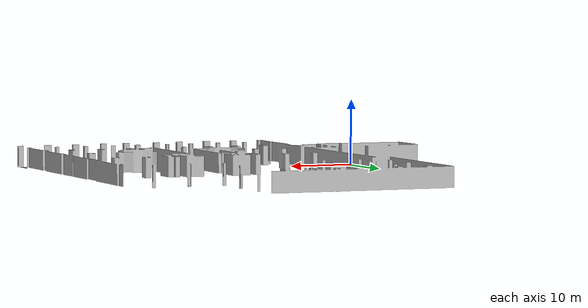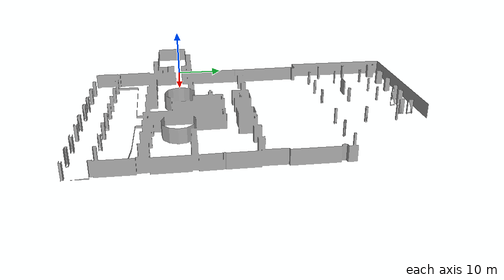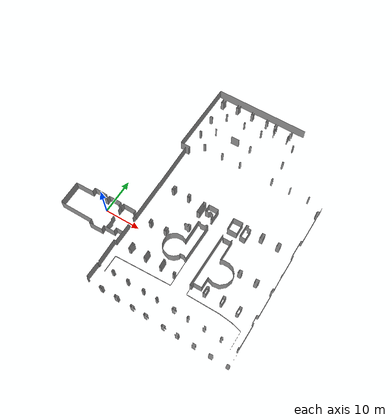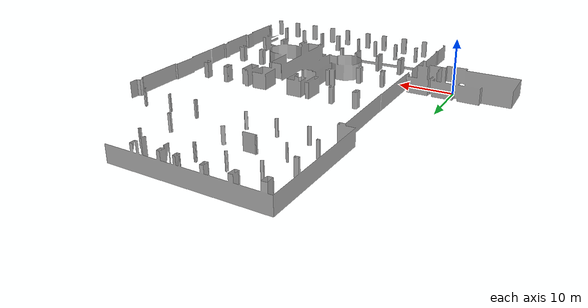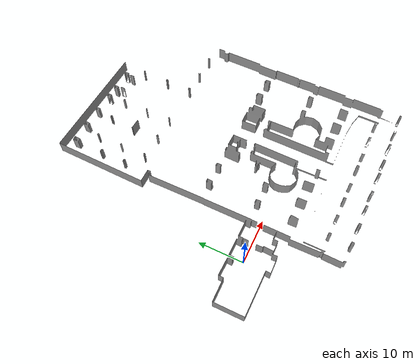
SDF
<?xml version="1.0" ?>
<sdf version="1.4">
  <model name="master_big">
    <static>true</static>
    <link name="link">
      <pose>0 0 0 0 0 0</pose>
      <collision name="collision">
        <geometry>
          <mesh>
            <uri>model://master_big/meshes/master_big.stl</uri>
            <scale>1 1 1</scale>
          </mesh>
        </geometry>
      </collision>
      <visual name="visual">
        <geometry>
          <mesh>
            <uri>model://master_big/meshes/master_big.stl</uri>
            <scale>1 1 1</scale>
          </mesh>
        </geometry>
      </visual>
    </link>
  </model>
</sdf>
